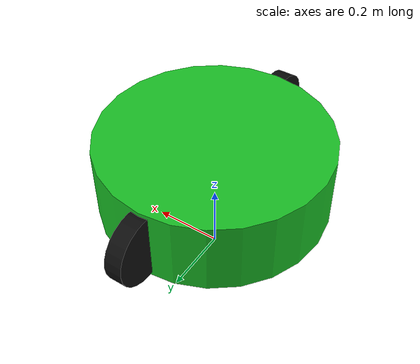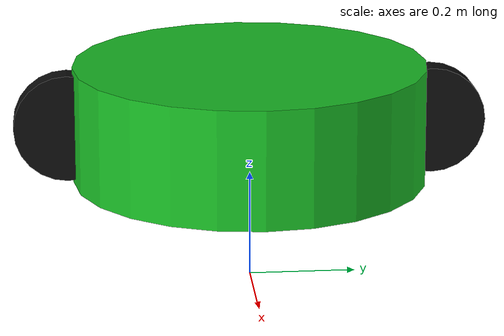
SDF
<?xml version="1.0" ?>
<sdf version="1.6">
  <model name="hybrid_robot">
    <static>false</static>
    <pose>0 0 0.3 0 0 0</pose>

    <!-- BASE -->
    <link name="base_link">
      <inertial>
        <mass>7.0</mass>
        <inertia>
          <ixx>0.14</ixx>
          <iyy>0.14</iyy>
          <izz>0.14</izz>
          <ixy>0</ixy>
          <ixz>0</ixz>
          <iyz>0</iyz>
        </inertia>
      </inertial>

      <collision name="base_collision">
        <geometry>
          <cylinder>
            <radius>0.33</radius>
            <length>0.22</length>
          </cylinder>
        </geometry>
      </collision>

      <visual name="base_visual">
        <geometry>
          <cylinder>
            <radius>0.33</radius>
            <length>0.22</length>
          </cylinder>
        </geometry>
        <material>
          <ambient>0.1 0.75 0.15 1</ambient>
        </material>
      </visual>
    </link>

    <!-- LEFT WHEEL -->
    <link name="left_wheel">
      <pose>0 0.34 0 0 1.57 0</pose>
      <inertial>
        <mass>1.2</mass>
        <inertia>
          <ixx>0.012</ixx>
          <iyy>0.012</iyy>
          <izz>0.012</izz>
          <ixy>0</ixy>
          <ixz>0</ixz>
          <iyz>0</iyz>
        </inertia>
      </inertial>
      <collision name="left_collision">
        <geometry>
          <cylinder>
            <radius>0.1</radius>
            <length>0.05</length>
          </cylinder>
        </geometry>
      </collision>
      <visual name="left_visual">
        <geometry>
          <cylinder>
            <radius>0.1</radius>
            <length>0.05</length>
          </cylinder>
        </geometry>
        <material>
          <ambient>0.05 0.05 0.05 1</ambient>
        </material>
      </visual>
    </link>

    <!-- RIGHT WHEEL -->
    <link name="right_wheel">
      <pose>0 -0.34 0 0 1.57 0</pose>
      <inertial>
        <mass>1.2</mass>
        <inertia>
          <ixx>0.012</ixx>
          <iyy>0.012</iyy>
          <izz>0.012</izz>
          <ixy>0</ixy>
          <ixz>0</ixz>
          <iyz>0</iyz>
        </inertia>
      </inertial>
      <collision name="right_collision">
        <geometry>
          <cylinder>
            <radius>0.1</radius>
            <length>0.05</length>
          </cylinder>
        </geometry>
      </collision>
      <visual name="right_visual">
        <geometry>
          <cylinder>
            <radius>0.1</radius>
            <length>0.05</length>
          </cylinder>
        </geometry>
        <material>
          <ambient>0.05 0.05 0.05 1</ambient>
        </material>
      </visual>
    </link>

    <!-- JOINTS -->
    <joint name="left_wheel_joint" type="revolute">
      <parent>base_link</parent>
      <child>left_wheel</child>
      <axis>
        <xyz>0 1 0</xyz>
        <limit>
          <lower>-1000</lower>
          <upper>1000</upper>
        </limit>
      </axis>
    </joint>

    <joint name="right_wheel_joint" type="revolute">
      <parent>base_link</parent>
      <child>right_wheel</child>
      <axis>
        <xyz>0 1 0</xyz>
        <limit>
          <lower>-1000</lower>
          <upper>1000</upper>
        </limit>
      </axis>
    </joint>

    <!-- DIFF DRIVE PLUGIN -->
    <plugin name="hybrid_diff_drive" filename="libgazebo_ros_diff_drive.so">
      <ros>
        <namespace>/hybrid</namespace>
      </ros>
      <left_joint>left_wheel_joint</left_joint>
      <right_joint>right_wheel_joint</right_joint>
      <wheel_separation>0.68</wheel_separation>
      <wheel_diameter>0.2</wheel_diameter>
      <command_topic>cmd_vel</command_topic>
      <odometry_topic>odom</odometry_topic>
    </plugin>

  </model>
</sdf>
